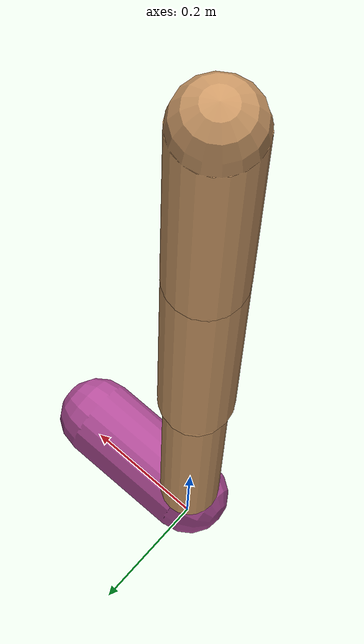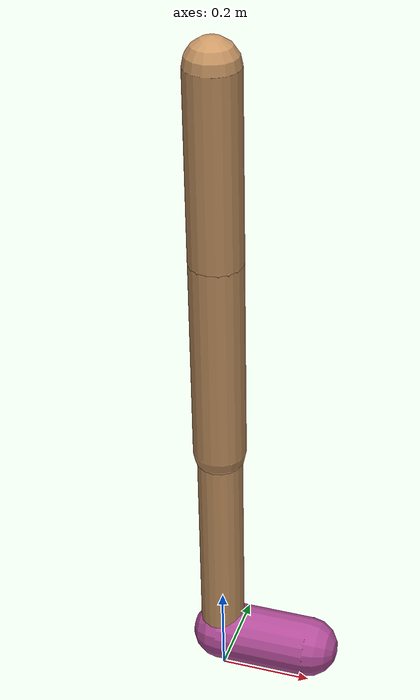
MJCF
<?xml version="1.0" encoding="utf-8"?>
<mujoco model="walker2d">
	<compiler angle="degree" coordinate="global" inertiafromgeom="true"></compiler>
	<default>
		<joint armature="0.01" damping="0.10301913616427356" limited="true"></joint>
		<geom conaffinity="0" condim="3" contype="1" density="1000" friction="0.9582753420183618 0.11970077874301005 0.08735583969560536" rgba="0.8 0.6 .4 1"></geom>
	</default>
	<option integrator="RK4" timestep="0.002"></option>
	<worldbody>
		<body name="torso">
			<joint armature="0" axis="1 0 0" damping="0.0" limited="false" name="ignorex" pos="0 0 0" stiffness="0.0" type="slide"></joint>
			<joint armature="0" axis="0 0 1" damping="0.0" limited="false" name="ignorez" pos="0 0 0" ref="1.25" stiffness="0.0" type="slide"></joint>
			<joint armature="0" axis="0 1 0" damping="0.0" limited="false" name="ignorey" pos="0 0 0" stiffness="0.0" type="hinge"></joint>
			<geom fromto="0 0 1.45 0 0 1.05" name="torso_geom" size="0.05606211935144354" type="capsule"></geom>
			<body name="thigh">
				<joint axis="0 -1 0" name="thigh_joint" pos="0 0 1.05" range="-150 0" type="hinge"></joint>
				<geom fromto="0 0 1.05 0 0 0.6" name="thigh_geom" size="0.055833199420042216" type="capsule"></geom>
				<body name="leg">
					<joint axis="0 -1 0" name="leg_joint" pos="0 0 0.6" range="-150 0" type="hinge"></joint>
					<geom fromto="0 0 0.6 0 0 0.1" name="leg_geom" size="0.04785341835147186" type="capsule"></geom>
					<body name="foot">
						<joint axis="0 -1 0" name="foot_joint" pos="0 0 0.1" range="-45 45" type="hinge"></joint>
						<geom fromto="-0.0 0 0.1 0.2 0 0.1" name="foot_geom" size="0.06368309162634238" type="capsule"></geom>
					</body>
				</body>
			</body>
			<body name="thigh_left">
				<joint axis="0 -1 0" name="thigh_left_joint" pos="0 0 1.05" range="-150 0" type="hinge"></joint>
				<geom fromto="0 0 1.05 0 0 0.6" name="thigh_left_geom" rgba=".7 .3 .6 1" size="0.035263074814456806" type="capsule"></geom>
				<body name="leg_left">
					<joint axis="0 -1 0" name="leg_left_joint" pos="0 0 0.6" range="-150 0" type="hinge"></joint>
					<geom fromto="0 0 0.6 0 0 0.1" name="leg_left_geom" rgba=".7 .3 .6 1" size="0.03677844465355967" type="capsule"></geom>
					<body name="foot_left">
						<joint axis="0 -1 0" name="foot_left_joint" pos="0 0 0.1" range="-45 45" type="hinge"></joint>
						<geom fromto="-0.0 0 0.1 0.2 0 0.1" name="foot_left_geom" rgba=".7 .3 .6 1" size="0.06566011292676392" type="capsule"></geom>
					</body>
				</body>
			</body>
		</body>
	</worldbody>
	<actuator>
		<motor ctrllimited="true" ctrlrange="-1.0 1.0" gear="100" joint="thigh_joint"></motor>
		<motor ctrllimited="true" ctrlrange="-1.0 1.0" gear="100" joint="leg_joint"></motor>
		<motor ctrllimited="true" ctrlrange="-1.0 1.0" gear="100" joint="foot_joint"></motor>
		<motor ctrllimited="true" ctrlrange="-1.0 1.0" gear="100" joint="thigh_left_joint"></motor>
		<motor ctrllimited="true" ctrlrange="-1.0 1.0" gear="100" joint="leg_left_joint"></motor>
		<motor ctrllimited="true" ctrlrange="-1.0 1.0" gear="100" joint="foot_left_joint"></motor>
	</actuator>
</mujoco>
